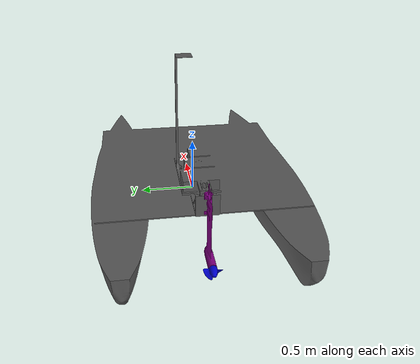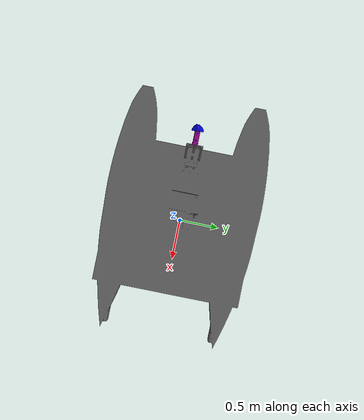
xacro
<?xml version="1.0"?>
<robot xmlns:xacro="http://ros.org/wiki/xacro" name="aquanaute">

    <material name="blue">
        <color rgba="0 0 0.8 1"/>
    </material>
    <material name="red">
        <color rgba="0.8 0 0 1"/>
    </material>
    <material name="green">
        <color rgba="0 0.8 0 0.5"/>
    </material>
    <material name="cyan">
        <color rgba="0 0.6 0.6 1"/>
    </material>
    <material name="yellow">
        <color rgba="0.8 0.8 0 1"/>
    </material>
    <material name="purple">
        <color rgba="0.5 0 0.5 1"/>
    </material>
    <material name="white">
        <color rgba="1 1 1 1"/>
    </material>
    <material name="gray">
        <color rgba="0.35 0.35 0.35 1"/>
    </material>
    <material name="black">
        <color rgba="0 0 0 1"/>
    </material>

    <!-- * * * Link Definitions * * * -->
    <link name="base_link">
        <visual>
            <origin rpy="0 0 0" xyz="0 0 0"/>
            <geometry>
                <sphere radius="0.001"/>
            </geometry>
            <material name="blue"/>
        </visual>
    </link>

    <link name="boat_link">
        <inertial>
            <origin xyz="0 0 0" rpy="0 0 0"/>
            <mass value="38.718"/>
            <inertia ixx="16.283" ixy="0.008" ixz="0.458" iyy="19.728" iyz="0.0" izz="33.013"/>
        </inertial>

        <collision>
            <origin xyz="0 0 0" rpy="0 0 0"/>
            <geometry>
                <mesh filename="package://aquanaute_description/models/meshes/Assambly_aquanaute.stl"/>
            </geometry>
        </collision>

        <visual>
            <origin rpy="0 0 0" xyz="0 0 0"/>
            <geometry>
                <mesh filename="package://aquanaute_description/models/meshes/Assambly_aquanaute.stl"/>
            </geometry>
            <material name="gray"/>
        </visual>
    </link>

    <link name="motor_link">
        <inertial>
            <origin xyz="-0.133 0 -0.391" rpy="0 0 0"/>
            <mass value="6.6"/>
            <inertia ixx="0.072" ixy="3.604" ixz="-0.011" iyy="0.111" iyz="5.484" izz="0.042"/>
        </inertial>

        <collision>
            <origin xyz="0 0 0" rpy="0 0 0"/>
            <geometry>
                <mesh filename="package://aquanaute_description/models/meshes/Motor.stl"/>
            </geometry>
        </collision>

        <visual>
            <origin rpy="0 0 0" xyz="0 0 0"/>
            <geometry>
                <mesh filename="package://aquanaute_description/models/meshes/Motor.stl"/>
            </geometry>
            <material name="purple"/>
        </visual>
    </link>

    <link name="propeller_link">
        <inertial>
            <origin xyz="-0.034 0 0" rpy="0 0 0"/>
            <mass value="0.233"/>
            <inertia ixx="0.00" ixy="0.00" ixz="0.00" iyy="0.00" iyz="0.00" izz="0.00"/>
        </inertial>

        <collision>
            <origin xyz="0 0 0" rpy="0 0 0"/>
            <geometry>
                <mesh filename="package://aquanaute_description/models/meshes/Propeller.stl"/>
            </geometry>
        </collision>

        <visual>
            <origin rpy="0 0 0" xyz="0 0 0"/>
            <geometry>
                <mesh filename="package://aquanaute_description/models/meshes/Propeller.stl"/>
            </geometry>
            <material name="blue"/>
        </visual>
    </link>

    <link name="imu_link">
        <visual>
            <origin rpy="0 0 0" xyz="0 0 0"/>
            <geometry>
                <cylinder radius="0.04" length="0.05"/>
            </geometry>
            <material name="cyan"/>
        </visual>
    </link>

    <!-- * * * Joint Definitions * * * -->
    <joint name="boat_base_joint" type="fixed">
        <parent link="base_link"/>
        <child link="boat_link"/>
        <origin xyz="0 0 0.25" rpy="0 0 0"/>
    </joint>

    <joint name="motor_boat_joint" type="revolute">
        <parent link="boat_link"/>
        <child link="motor_link"/>
        <origin xyz="-0.905 0.0 0.115" rpy="0 0 0"/>
        <axis xyz="0 0 1"/>
        <limit effort="-1" velocity="-1" lower="-0.9" upper="0.9"/>
        <dynamics damping="0.0000001"/>
    </joint>

    <joint name="propeller_motor_joint" type="revolute">
        <parent link="motor_link"/>
        <child link="propeller_link"/>
        <origin xyz="-0.265 0 -0.42" rpy="0 0 0"/>
        <axis xyz="1 0 0"/>
        <limit effort="-1" velocity="-1" lower="-1e+16" upper="1e+16"/>
        <dynamics damping="0.0000001"/>
    </joint>

    <joint name="imu_boat_joint" type="fixed">
        <parent link="boat_link"/>
        <child link="imu_link"/>
        <origin xyz="0 0 0.04" rpy="0 0 0"/>
    </joint>
</robot>
